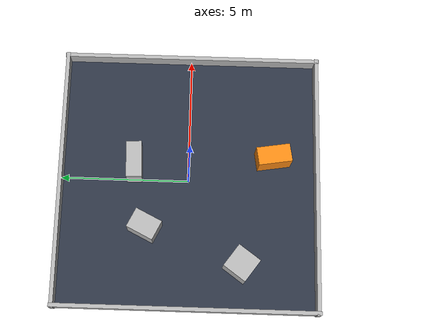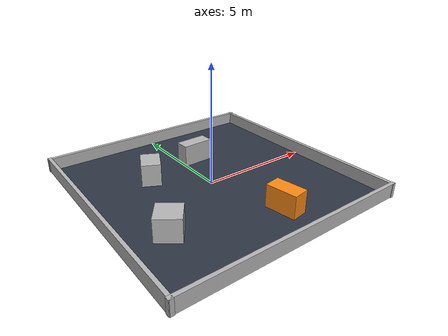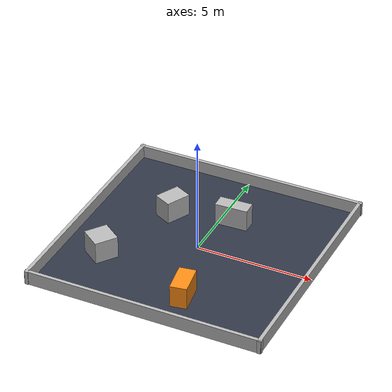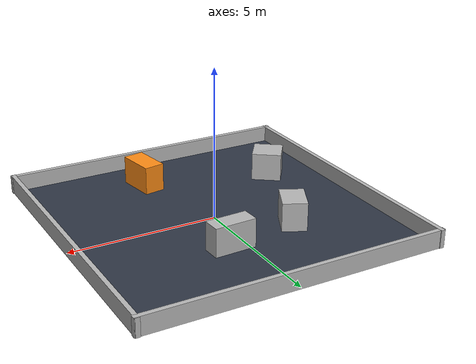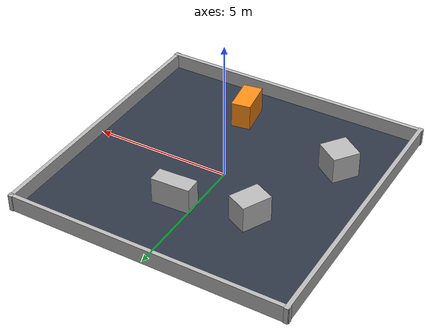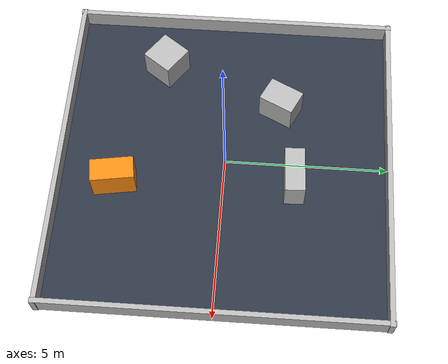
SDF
<?xml version='1.0' encoding='utf-8'?>
<sdf version="1.9">
  <world name="pursuit_random">
    <physics name="1ms" type="ignored"><max_step_size>0.003</max_step_size><real_time_factor>1.0</real_time_factor></physics>
    <plugin filename="gz-sim-physics-system" name="gz::sim::systems::Physics" />
    <plugin filename="gz-sim-user-commands-system" name="gz::sim::systems::UserCommands" />
    <plugin filename="gz-sim-scene-broadcaster-system" name="gz::sim::systems::SceneBroadcaster" />
    <plugin filename="gz-sim-sensors-system" name="gz::sim::systems::Sensors"><render_engine>ogre2</render_engine></plugin>
    <light type="directional" name="sun"><pose>0 0 10 0 0 0</pose><diffuse>0.8 0.8 0.8 1</diffuse><specular>0.2 0.2 0.2 1</specular><direction>-0.4 0.2 -1</direction></light>
    <model name="ground"><static>true</static><link name="link"><collision name="collision"><geometry><box><size>10 10 0.1</size></box></geometry></collision><visual name="visual"><geometry><box><size>10 10 0.1</size></box></geometry><material><ambient>0.12 0.14 0.18 1</ambient><diffuse>0.18 0.21 0.27 1</diffuse></material></visual></link></model>
    <model name="walls"><static>true</static><link name="link">
      <collision name="north"><pose>0 5 0.3 0 0 0</pose><geometry><box><size>10.2 0.15 0.6</size></box></geometry></collision><visual name="north_v"><pose>0 5 0.3 0 0 0</pose><geometry><box><size>10.2 0.15 0.6</size></box></geometry></visual>
      <collision name="south"><pose>0 -5 0.3 0 0 0</pose><geometry><box><size>10.2 0.15 0.6</size></box></geometry></collision><visual name="south_v"><pose>0 -5 0.3 0 0 0</pose><geometry><box><size>10.2 0.15 0.6</size></box></geometry></visual>
      <collision name="east"><pose>5 0 0.3 0 0 0</pose><geometry><box><size>0.15 10.2 0.6</size></box></geometry></collision><visual name="east_v"><pose>5 0 0.3 0 0 0</pose><geometry><box><size>0.15 10.2 0.6</size></box></geometry></visual>
      <collision name="west"><pose>-5 0 0.3 0 0 0</pose><geometry><box><size>0.15 10.2 0.6</size></box></geometry></collision><visual name="west_v"><pose>-5 0 0.3 0 0 0</pose><geometry><box><size>0.15 10.2 0.6</size></box></geometry></visual>
    </link></model>
    <model name="obstacles"><static>true</static><link name="link">
      <collision name="a"><pose>0.9620 -3.2774 0.5 0 0 -1.4135</pose><geometry><box><size>1.3 0.7 1</size></box></geometry></collision><visual name="av"><pose>0.9620 -3.2774 0.5 0 0 -1.4135</pose><geometry><box><size>1.3 0.7 1</size></box></geometry><material><ambient>1 0.45 0.05 1</ambient><diffuse>1 0.55 0.08 1</diffuse></material></visual>
      <collision name="b"><pose>-1.9098 1.6317 0.5 0 0 1.1102</pose><geometry><box><size>1.1 0.8 1</size></box></geometry></collision><visual name="bv"><pose>-1.9098 1.6317 0.5 0 0 1.1102</pose><geometry><box><size>1.1 0.8 1</size></box></geometry></visual>
      <collision name="c"><pose>-3.2669 -2.0780 0.5 0 0 0.9418</pose><geometry><box><size>1.0 1.0 1</size></box></geometry></collision><visual name="cv"><pose>-3.2669 -2.0780 0.5 0 0 0.9418</pose><geometry><box><size>1.0 1.0 1</size></box></geometry></visual>
      <collision name="d"><pose>0.6159 2.1351 0.5 0 0 -3.1008</pose><geometry><box><size>1.4 0.6 1</size></box></geometry></collision><visual name="dv"><pose>0.6159 2.1351 0.5 0 0 -3.1008</pose><geometry><box><size>1.4 0.6 1</size></box></geometry></visual>
    </link></model>
  </world>
</sdf>
